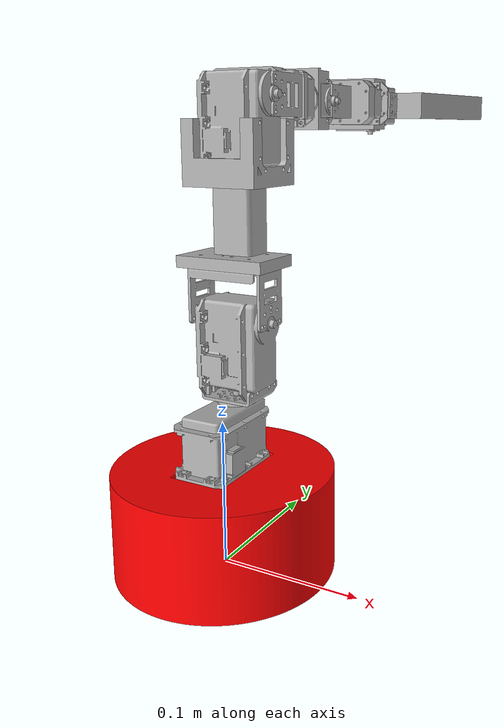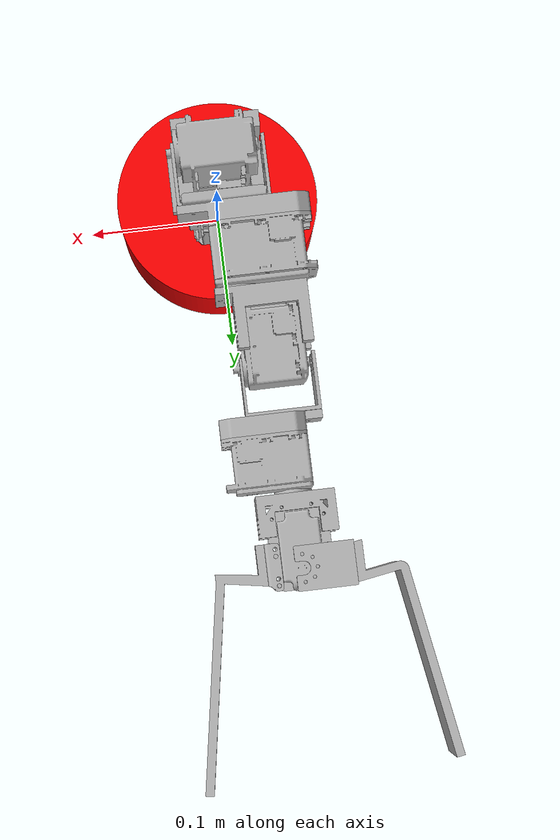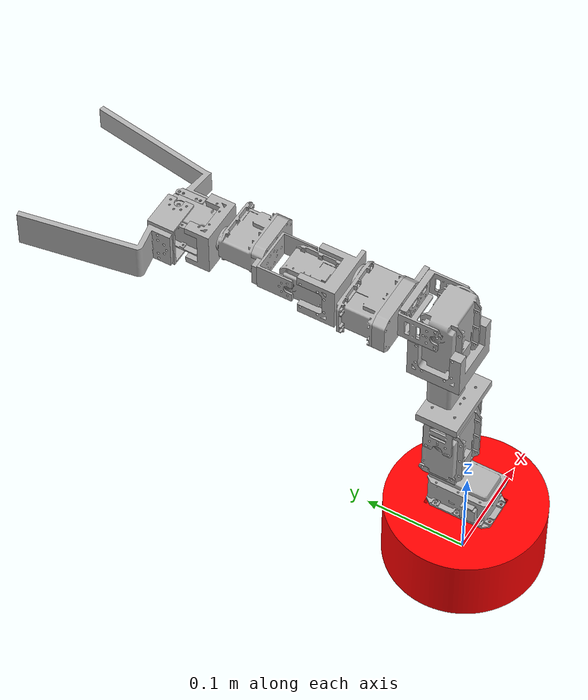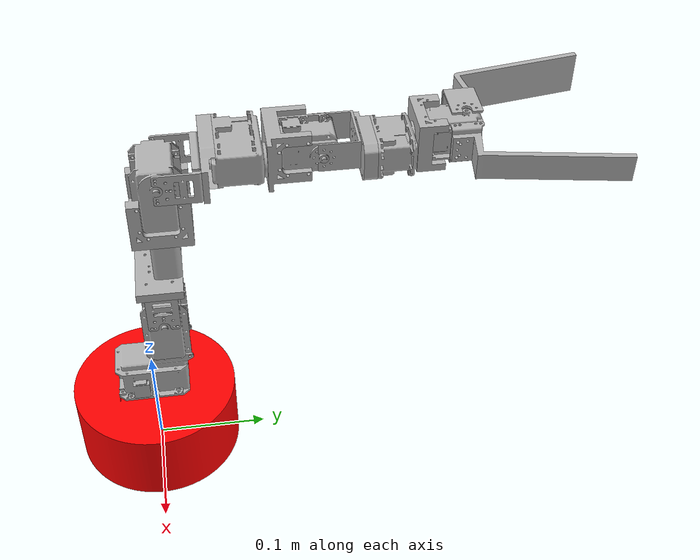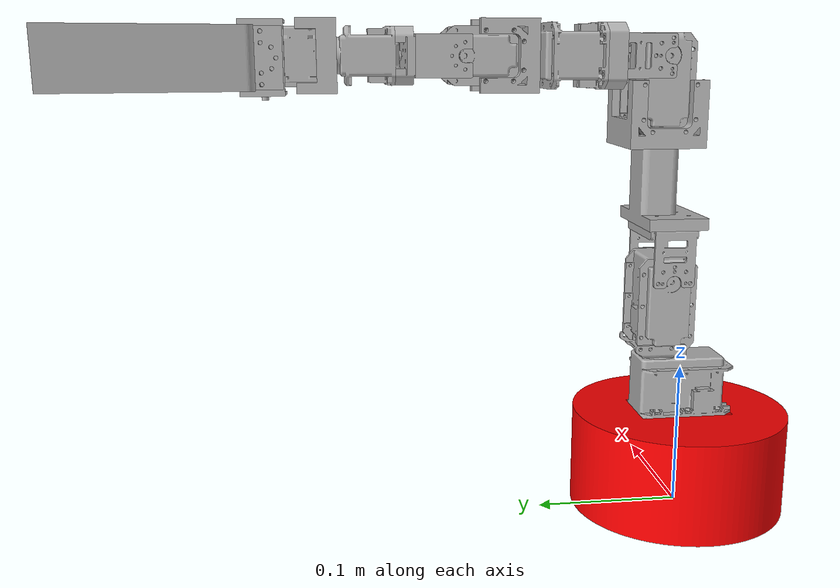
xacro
<?xml version="1.0" ?>
<robot name="success" xmlns:xacro="http://www.ros.org/wiki/xacro">

<xacro:include filename="$(find robotarm1)/urdf/materials.xacro" />

<link name="world"/>
<link name="base_link">

  <visual>
    <origin xyz="0.0 0.0 0.0" rpy="0 0 0"/>
    <geometry>
      <mesh filename="file://$(find robotarm1)/meshes/base_link.stl" scale="0.001 0.001 0.001"/>
    </geometry>
    <material name="red"/>
  </visual>
  <collision>
    <origin xyz="0.0 0.0 0.0" rpy="0 0 0"/>
    <geometry>
      <mesh filename="file://$(find robotarm1)/meshes/base_link.stl" scale="0.001 0.001 0.001"/>
    </geometry>
  </collision>
</link>

<link name="motor_1_1">
  <inertial>
    <origin xyz="3.628829346516639e-06 0.002321966228830479 0.01746041392822499" rpy="0 0 0"/>
    <mass value="0.6789927169229144"/>
    <inertia ixx="0.000325" iyy="0.000181" izz="0.000257" ixy="-0.0" iyz="-8e-06" ixz="0.0"/>
  </inertial>
  <visual>
    <origin xyz="-0.0 -0.0 -0.07" rpy="0 0 0"/>
    <geometry>
      <mesh filename="file://$(find robotarm1)/meshes/motor_1_1.stl" scale="0.001 0.001 0.001"/>
    </geometry>
    <material name="silver"/>
  </visual>
  <collision>
    <origin xyz="-0.0 -0.0 -0.07" rpy="0 0 0"/>
    <geometry>
      <mesh filename="file://$(find robotarm1)/meshes/motor_1_1.stl" scale="0.001 0.001 0.001"/>
    </geometry>
  </collision>
</link>

<link name="link_1_1">
  <inertial>
    <origin xyz="3.116517286715824e-14 0.0011404315085001282 0.0026024287473348923" rpy="0 0 0"/>
    <mass value="0.02126433295845854"/>
    <inertia ixx="2e-06" iyy="4e-06" izz="6e-06" ixy="0.0" iyz="-0.0" ixz="0.0"/>
  </inertial>
  <visual>
    <origin xyz="-0.0 -0.01805 -0.113" rpy="0 0 0"/>
    <geometry>
      <mesh filename="file://$(find robotarm1)/meshes/link_1_1.stl" scale="0.001 0.001 0.001"/>
    </geometry>
    <material name="silver"/>
  </visual>
  <collision>
    <origin xyz="-0.0 -0.01805 -0.113" rpy="0 0 0"/>
    <geometry>
      <mesh filename="file://$(find robotarm1)/meshes/link_1_1.stl" scale="0.001 0.001 0.001"/>
    </geometry>
  </collision>
</link>

<link name="motor_2_1">
  <inertial>
    <origin xyz="-0.016539586071775015 0.011003628829346513 0.03207196622883057" rpy="0 0 0"/>
    <mass value="0.6789927169229144"/>
    <inertia ixx="0.000257" iyy="0.000325" izz="0.000181" ixy="0.0" iyz="-0.0" ixz="-8e-06"/>
  </inertial>
  <visual>
    <origin xyz="-0.017 -0.00705 -0.1197" rpy="0 0 0"/>
    <geometry>
      <mesh filename="file://$(find robotarm1)/meshes/motor_2_1.stl" scale="0.001 0.001 0.001"/>
    </geometry>
    <material name="silver"/>
  </visual>
  <collision>
    <origin xyz="-0.017 -0.00705 -0.1197" rpy="0 0 0"/>
    <geometry>
      <mesh filename="file://$(find robotarm1)/meshes/motor_2_1.stl" scale="0.001 0.001 0.001"/>
    </geometry>
  </collision>
</link>

<link name="link_2_1">
  <inertial>
    <origin xyz="-0.02799999999998063 1.3877787807814457e-17 0.02600995253479038" rpy="0 0 0"/>
    <mass value="0.05448373289857463"/>
    <inertia ixx="1.3e-05" iyy="3.3e-05" izz="3.1e-05" ixy="0.0" iyz="-0.0" ixz="-0.0"/>
  </inertial>
  <visual>
    <origin xyz="-0.0278 -0.01805 -0.1675" rpy="0 0 0"/>
    <geometry>
      <mesh filename="file://$(find robotarm1)/meshes/link_2_1.stl" scale="0.001 0.001 0.001"/>
    </geometry>
    <material name="silver"/>
  </visual>
  <collision>
    <origin xyz="-0.0278 -0.01805 -0.1675" rpy="0 0 0"/>
    <geometry>
      <mesh filename="file://$(find robotarm1)/meshes/link_2_1.stl" scale="0.001 0.001 0.001"/>
    </geometry>
  </collision>
</link>

<link name="link_3_1">
  <inertial>
    <origin xyz="-0.019002468210588833 -0.006143533986367598 0.020025426911635252" rpy="0 0 0"/>
    <mass value="0.0552102238099497"/>
    <inertia ixx="2e-05" iyy="2.5e-05" izz="1.5e-05" ixy="-0.0" iyz="-3e-06" ixz="-0.0"/>
  </inertial>
  <visual>
    <origin xyz="-0.0188 -0.02905 -0.2035" rpy="0 0 0"/>
    <geometry>
      <mesh filename="file://$(find robotarm1)/meshes/link_3_1.stl" scale="0.001 0.001 0.001"/>
    </geometry>
    <material name="silver"/>
  </visual>
  <collision>
    <origin xyz="-0.0188 -0.02905 -0.2035" rpy="0 0 0"/>
    <geometry>
      <mesh filename="file://$(find robotarm1)/meshes/link_3_1.stl" scale="0.001 0.001 0.001"/>
    </geometry>
  </collision>
</link>

<link name="link_4_1">
  <inertial>
    <origin xyz="-0.012000000096857465 0.008000000078501213 0.01235958080171562" rpy="0 0 0"/>
    <mass value="0.04342078162492755"/>
    <inertia ixx="1.9e-05" iyy="2.1e-05" izz="2.8e-05" ixy="-0.0" iyz="-0.0" ixz="0.0"/>
  </inertial>
  <visual>
    <origin xyz="-0.0118 -0.01805 -0.2565" rpy="0 0 0"/>
    <geometry>
      <mesh filename="file://$(find robotarm1)/meshes/link_4_1.stl" scale="0.001 0.001 0.001"/>
    </geometry>
    <material name="silver"/>
  </visual>
  <collision>
    <origin xyz="-0.0118 -0.01805 -0.2565" rpy="0 0 0"/>
    <geometry>
      <mesh filename="file://$(find robotarm1)/meshes/link_4_1.stl" scale="0.001 0.001 0.001"/>
    </geometry>
  </collision>
</link>

<link name="motor_3_1">
  <inertial>
    <origin xyz="-0.016539586168632506 0.011003628829346456 0.032071966228830684" rpy="0 0 0"/>
    <mass value="0.6789927169229144"/>
    <inertia ixx="0.000257" iyy="0.000325" izz="0.000181" ixy="0.0" iyz="-0.0" ixz="-8e-06"/>
  </inertial>
  <visual>
    <origin xyz="-0.01755 -0.01505 -0.2673" rpy="0 0 0"/>
    <geometry>
      <mesh filename="file://$(find robotarm1)/meshes/motor_3_1.stl" scale="0.001 0.001 0.001"/>
    </geometry>
    <material name="silver"/>
  </visual>
  <collision>
    <origin xyz="-0.01755 -0.01505 -0.2673" rpy="0 0 0"/>
    <geometry>
      <mesh filename="file://$(find robotarm1)/meshes/motor_3_1.stl" scale="0.001 0.001 0.001"/>
    </geometry>
  </collision>
</link>

<link name="link_5_1">
  <inertial>
    <origin xyz="-0.028000000096838118 0.026009952534790198 1.1102230246251565e-16" rpy="0 0 0"/>
    <mass value="0.05448373289857463"/>
    <inertia ixx="1.3e-05" iyy="3.1e-05" izz="3.3e-05" ixy="-0.0" iyz="0.0" ixz="-0.0"/>
  </inertial>
  <visual>
    <origin xyz="-0.02835 -0.02605 -0.3151" rpy="0 0 0"/>
    <geometry>
      <mesh filename="file://$(find robotarm1)/meshes/link_5_1.stl" scale="0.001 0.001 0.001"/>
    </geometry>
    <material name="silver"/>
  </visual>
  <collision>
    <origin xyz="-0.02835 -0.02605 -0.3151" rpy="0 0 0"/>
    <geometry>
      <mesh filename="file://$(find robotarm1)/meshes/link_5_1.stl" scale="0.001 0.001 0.001"/>
    </geometry>
  </collision>
</link>

<link name="link_6_1">
  <inertial>
    <origin xyz="-0.03447684065920143 0.003923958737854359 0.011000000000006394" rpy="0 0 0"/>
    <mass value="0.019539807667148513"/>
    <inertia ixx="3e-06" iyy="1.2e-05" izz="9e-06" ixy="0.0" iyz="0.0" ixz="0.0"/>
  </inertial>
  <visual>
    <origin xyz="-0.01935 -0.06205 -0.3041" rpy="0 0 0"/>
    <geometry>
      <mesh filename="file://$(find robotarm1)/meshes/link_6_1.stl" scale="0.001 0.001 0.001"/>
    </geometry>
    <material name="silver"/>
  </visual>
  <collision>
    <origin xyz="-0.01935 -0.06205 -0.3041" rpy="0 0 0"/>
    <geometry>
      <mesh filename="file://$(find robotarm1)/meshes/link_6_1.stl" scale="0.001 0.001 0.001"/>
    </geometry>
  </collision>
</link>

<link name="motor_4_1">
  <inertial>
    <origin xyz="-0.01920343918080639 0.01745225090137789 -0.017299999874397454" rpy="0 0 0"/>
    <mass value="0.5683577063335443"/>
    <inertia ixx="0.000133" iyy="0.000195" izz="0.000234" ixy="-7e-06" iyz="0.0" ixz="0.0"/>
  </inertial>
  <visual>
    <origin xyz="-0.002397 -0.07405 -0.3324" rpy="0 0 0"/>
    <geometry>
      <mesh filename="file://$(find robotarm1)/meshes/motor_4_1.stl" scale="0.001 0.001 0.001"/>
    </geometry>
    <material name="silver"/>
  </visual>
  <collision>
    <origin xyz="-0.002397 -0.07405 -0.3324" rpy="0 0 0"/>
    <geometry>
      <mesh filename="file://$(find robotarm1)/meshes/motor_4_1.stl" scale="0.001 0.001 0.001"/>
    </geometry>
  </collision>
</link>

<link name="link_7_1">
  <inertial>
    <origin xyz="3.833091157044548e-08 0.00968525292310743 0.01623972916540989" rpy="0 0 0"/>
    <mass value="0.022873425755281396"/>
    <inertia ixx="9e-06" iyy="1.2e-05" izz="8e-06" ixy="0.0" iyz="-0.0" ixz="0.0"/>
  </inertial>
  <visual>
    <origin xyz="0.001603 -0.11455 -0.3151" rpy="0 0 0"/>
    <geometry>
      <mesh filename="file://$(find robotarm1)/meshes/link_7_1.stl" scale="0.001 0.001 0.001"/>
    </geometry>
    <material name="silver"/>
  </visual>
  <collision>
    <origin xyz="0.001603 -0.11455 -0.3151" rpy="0 0 0"/>
    <geometry>
      <mesh filename="file://$(find robotarm1)/meshes/link_7_1.stl" scale="0.001 0.001 0.001"/>
    </geometry>
  </collision>
</link>

<link name="motor_5_1">
  <inertial>
    <origin xyz="0.008477865125484142 0.024666145926973942 0.014969622739469779" rpy="0 0 0"/>
    <mass value="0.349956896326235"/>
    <inertia ixx="0.000101" iyy="6.3e-05" izz="8.3e-05" ixy="-0.0" iyz="2e-06" ixz="-0.0"/>
  </inertial>
  <visual>
    <origin xyz="0.010103 -0.124747 -0.3176" rpy="0 0 0"/>
    <geometry>
      <mesh filename="file://$(find robotarm1)/meshes/motor_5_1.stl" scale="0.001 0.001 0.001"/>
    </geometry>
    <material name="silver"/>
  </visual>
  <collision>
    <origin xyz="0.010103 -0.124747 -0.3176" rpy="0 0 0"/>
    <geometry>
      <mesh filename="file://$(find robotarm1)/meshes/motor_5_1.stl" scale="0.001 0.001 0.001"/>
    </geometry>
  </collision>
</link>

<link name="link_8_1">
  <inertial>
    <origin xyz="3.825698961052934e-08 0.02042733790270429 0.022291261982574417" rpy="0 0 0"/>
    <mass value="0.005409120330097442"/>
    <inertia ixx="2e-06" iyy="2e-06" izz="1e-06" ixy="0.0" iyz="0.0" ixz="0.0"/>
  </inertial>
  <visual>
    <origin xyz="0.001603 -0.160547 -0.3121" rpy="0 0 0"/>
    <geometry>
      <mesh filename="file://$(find robotarm1)/meshes/link_8_1.stl" scale="0.001 0.001 0.001"/>
    </geometry>
    <material name="silver"/>
  </visual>
  <collision>
    <origin xyz="0.001603 -0.160547 -0.3121" rpy="0 0 0"/>
    <geometry>
      <mesh filename="file://$(find robotarm1)/meshes/link_8_1.stl" scale="0.001 0.001 0.001"/>
    </geometry>
  </collision>
</link>

<link name="link_9_1">
  <inertial>
    <origin xyz="3.853136140491084e-08 0.004151390075282618 -0.027206188860783076" rpy="0 0 0"/>
    <mass value="0.014111619441575405"/>
    <inertia ixx="4e-06" iyy="6e-06" izz="2e-06" ixy="0.0" iyz="0.0" ixz="-0.0"/>
  </inertial>
  <visual>
    <origin xyz="0.001603 -0.190547 -0.3481" rpy="0 0 0"/>
    <geometry>
      <mesh filename="file://$(find robotarm1)/meshes/link_9_1.stl" scale="0.001 0.001 0.001"/>
    </geometry>
    <material name="silver"/>
  </visual>
  <collision>
    <origin xyz="0.001603 -0.190547 -0.3481" rpy="0 0 0"/>
    <geometry>
      <mesh filename="file://$(find robotarm1)/meshes/link_9_1.stl" scale="0.001 0.001 0.001"/>
    </geometry>
  </collision>
</link>

<link name="motor_6_1">
  <inertial>
    <origin xyz="0.014977865319199186 0.015030646170741457 0.0013658771806745462" rpy="0 0 0"/>
    <mass value="0.349956896326235"/>
    <inertia ixx="0.000101" iyy="8.3e-05" izz="6.3e-05" ixy="0.0" iyz="-2e-06" ixz="-0.0"/>
  </inertial>
  <visual>
    <origin xyz="0.016603 -0.201847 -0.3206" rpy="0 0 0"/>
    <geometry>
      <mesh filename="file://$(find robotarm1)/meshes/motor_6_1.stl" scale="0.001 0.001 0.001"/>
    </geometry>
    <material name="silver"/>
  </visual>
  <collision>
    <origin xyz="0.016603 -0.201847 -0.3206" rpy="0 0 0"/>
    <geometry>
      <mesh filename="file://$(find robotarm1)/meshes/motor_6_1.stl" scale="0.001 0.001 0.001"/>
    </geometry>
  </collision>
</link>

<link name="link_10_1">
  <inertial>
    <origin xyz="1.8887901087167973e-05 0.0071153192036195745 1.639161584243709e-10" rpy="0 0 0"/>
    <mass value="0.01651736796671192"/>
    <inertia ixx="5e-06" iyy="8e-06" izz="5e-06" ixy="-0.0" iyz="0.0" ixz="0.0"/>
  </inertial>
  <visual>
    <origin xyz="0.001603 -0.237347 -0.3331" rpy="0 0 0"/>
    <geometry>
      <mesh filename="file://$(find robotarm1)/meshes/link_10_1.stl" scale="0.001 0.001 0.001"/>
    </geometry>
    <material name="silver"/>
  </visual>
  <collision>
    <origin xyz="0.001603 -0.237347 -0.3331" rpy="0 0 0"/>
    <geometry>
      <mesh filename="file://$(find robotarm1)/meshes/link_10_1.stl" scale="0.001 0.001 0.001"/>
    </geometry>
  </collision>
</link>

<link name="gripper_1_1">
  <inertial>
    <origin xyz="-0.00852213468080087 0.02466541483930529 0.014969622903382163" rpy="0 0 0"/>
    <mass value="0.349956896326235"/>
    <inertia ixx="0.000101" iyy="6.3e-05" izz="8.3e-05" ixy="-0.0" iyz="2e-06" ixz="-0.0"/>
  </inertial>
  <visual>
    <origin xyz="-0.006897 -0.245045 -0.3175" rpy="0 0 0"/>
    <geometry>
      <mesh filename="file://$(find robotarm1)/meshes/gripper_1_1.stl" scale="0.001 0.001 0.001"/>
    </geometry>
    <material name="silver"/>
  </visual>
  <collision>
    <origin xyz="-0.006897 -0.245045 -0.3175" rpy="0 0 0"/>
    <geometry>
      <mesh filename="file://$(find robotarm1)/meshes/gripper_1_1.stl" scale="0.001 0.001 0.001"/>
    </geometry>
  </collision>
</link>

<link name="link_11_1">
  <inertial>
    <origin xyz="-0.01984440856141868 -4.6226823008366225e-07 0.019999999077705555" rpy="0 0 0"/>
    <mass value="0.005783955125023724"/>
    <inertia ixx="2e-06" iyy="2e-06" izz="1e-06" ixy="-0.0" iyz="0.0" ixz="0.0"/>
  </inertial>
  <visual>
    <origin xyz="0.001603 -0.280845 -0.312" rpy="0 0 0"/>
    <geometry>
      <mesh filename="file://$(find robotarm1)/meshes/link_11_1.stl" scale="0.001 0.001 0.001"/>
    </geometry>
    <material name="silver"/>
  </visual>
  <collision>
    <origin xyz="0.001603 -0.280845 -0.312" rpy="0 0 0"/>
    <geometry>
      <mesh filename="file://$(find robotarm1)/meshes/link_11_1.stl" scale="0.001 0.001 0.001"/>
    </geometry>
  </collision>
</link>

<link name="link_12_1">
  <inertial>
    <origin xyz="0.0037855317374185585 0.008966871691439171 0.015000000163890914" rpy="0 0 0"/>
    <mass value="0.011446844551351427"/>
    <inertia ixx="2e-06" iyy="2e-06" izz="1e-06" ixy="0.0" iyz="0.0" ixz="0.0"/>
  </inertial>
  <visual>
    <origin xyz="-0.013397 -0.268345 -0.3175" rpy="0 0 0"/>
    <geometry>
      <mesh filename="file://$(find robotarm1)/meshes/link_12_1.stl" scale="0.001 0.001 0.001"/>
    </geometry>
    <material name="silver"/>
  </visual>
  <collision>
    <origin xyz="-0.013397 -0.268345 -0.3175" rpy="0 0 0"/>
    <geometry>
      <mesh filename="file://$(find robotarm1)/meshes/link_12_1.stl" scale="0.001 0.001 0.001"/>
    </geometry>
  </collision>
</link>

<link name="finger_1_1">
  <inertial>
    <origin xyz="0.029698751975400128 0.04833113338431294 1.6390966361967685e-10" rpy="0 0 0"/>
    <mass value="0.02058349518896819"/>
    <inertia ixx="3.5e-05" iyy="5e-06" izz="3.8e-05" ixy="-1e-05" iyz="-0.0" ixz="-0.0"/>
  </inertial>
  <visual>
    <origin xyz="-0.019397 -0.276845 -0.3325" rpy="0 0 0"/>
    <geometry>
      <mesh filename="file://$(find robotarm1)/meshes/finger_1_1.stl" scale="0.001 0.001 0.001"/>
    </geometry>
    <material name="silver"/>
  </visual>
  <collision>
    <origin xyz="-0.019397 -0.276845 -0.3325" rpy="0 0 0"/>
    <geometry>
      <mesh filename="file://$(find robotarm1)/meshes/finger_1_1.stl" scale="0.001 0.001 0.001"/>
    </geometry>
  </collision>
</link>

<link name="finger_2_1">
  <inertial>
    <origin xyz="-0.028807833816751158 0.04420295431414534 -7.216449660063518e-16" rpy="0 0 0"/>
    <mass value="0.0296291055226969"/>
    <inertia ixx="4.5e-05" iyy="9e-06" izz="4.7e-05" ixy="1.3e-05" iyz="-0.0" ixz="0.0"/>
  </inertial>
  <visual>
    <origin xyz="0.031603 -0.280845 -0.332" rpy="0 0 0"/>
    <geometry>
      <mesh filename="file://$(find robotarm1)/meshes/finger_2_1.stl" scale="0.001 0.001 0.001"/>
    </geometry>
    <material name="silver"/>
  </visual>
  <collision>
    <origin xyz="0.031603 -0.280845 -0.332" rpy="0 0 0"/>
    <geometry>
      <mesh filename="file://$(find robotarm1)/meshes/finger_2_1.stl" scale="0.001 0.001 0.001"/>
    </geometry>
  </collision>
</link>

<link name="ft_frame"/>
<link name="tool0"/>

<joint name="world_to_base" type="fixed">
  <parent link="world"/>
  <child link="base_link"/>
  <!-- Optionally set the origin for placement -->
  <origin xyz="0 0 0" rpy="0 0 0"/>
  <axis xyz="0 0 1"/>
</joint>

<joint name="Rigid 1" type="fixed">
  <origin xyz="0.0 0.0 0.07" rpy="0 0 0"/>
  <parent link="base_link"/>
  <child link="motor_1_1"/>
</joint>

<joint name="Revolute_2" type="revolute">
  <origin xyz="0.0 0.01805 0.043" rpy="0 0 0"/>
  <parent link="motor_1_1"/>
  <child link="link_1_1"/>
  <axis xyz="0.0 0.0 -1.0"/>
  <limit upper="1.658063" lower="-1.570796" effort="100" velocity="100"/>
</joint>

<joint name="Rigid 3" type="fixed">
  <origin xyz="0.017 -0.011 0.0067" rpy="0 0 0"/>
  <parent link="link_1_1"/>
  <child link="motor_2_1"/>
</joint>

<joint name="Revolute_4" type="revolute">
  <origin xyz="0.0108 0.011 0.0478" rpy="0 0 0"/>
  <parent link="motor_2_1"/>
  <child link="link_2_1"/>
  <axis xyz="-1.0 -0.0 0.0"/>
  <limit upper="1.570796" lower="-1.570796" effort="100" velocity="100"/>
</joint>

<joint name="Rigid 5" type="fixed">
  <origin xyz="-0.009 0.011 0.036" rpy="0 0 0"/>
  <parent link="link_2_1"/>
  <child link="link_3_1"/>
</joint>

<joint name="Rigid 6" type="fixed">
  <origin xyz="-0.007 -0.011 0.053" rpy="0 0 0"/>
  <parent link="link_3_1"/>
  <child link="link_4_1"/>
</joint>

<joint name="Rigid 7" type="fixed">
  <origin xyz="0.00575 -0.003 0.0108" rpy="0 0 0"/>
  <parent link="link_4_1"/>
  <child link="motor_3_1"/>
</joint>

<joint name="Revolute_8" type="revolute">
  <origin xyz="0.0108 0.011 0.0478" rpy="0 0 0"/>
  <parent link="motor_3_1"/>
  <child link="link_5_1"/>
  <axis xyz="-1.0 -0.0 0.0"/>
  <limit upper="1.570796" lower="-1.570796" effort="100" velocity="100"/>
</joint>

<joint name="Rigid 9" type="fixed">
  <origin xyz="-0.009 0.036 -0.011" rpy="0 0 0"/>
  <parent link="link_5_1"/>
  <child link="link_6_1"/>
</joint>

<joint name="Rigid 10" type="fixed">
  <origin xyz="-0.016953 0.012 0.0283" rpy="0 0 0"/>
  <parent link="link_6_1"/>
  <child link="motor_4_1"/>
</joint>

<joint name="Revolute_11" type="revolute">
  <origin xyz="-0.004 0.0405 -0.0173" rpy="0 0 0"/>
  <parent link="motor_4_1"/>
  <child link="link_7_1"/>
  <axis xyz="0.0 -1.0 0.0"/>
  <limit upper="1.570796" lower="-1.570796" effort="100" velocity="100"/>
</joint>

<joint name="Rigid 12" type="fixed">
  <origin xyz="-0.0085 0.010197 0.0025" rpy="0 0 0"/>
  <parent link="link_7_1"/>
  <child link="motor_5_1"/>
</joint>

<joint name="Revolute_13" type="revolute">
  <origin xyz="0.0085 0.0358 -0.0055" rpy="0 0 0"/>
  <parent link="motor_5_1"/>
  <child link="link_8_1"/>
  <axis xyz="-0.0 0.0 1.0"/>
  <limit upper="1.570796" lower="-1.570796" effort="100" velocity="100"/>
</joint>

<joint name="Rigid 14" type="fixed">
  <origin xyz="0.0 0.03 0.036" rpy="0 0 0"/>
  <parent link="link_8_1"/>
  <child link="link_9_1"/>
</joint>

<joint name="Rigid 15" type="fixed">
  <origin xyz="-0.015 0.0113 -0.0275" rpy="0 0 0"/>
  <parent link="link_9_1"/>
  <child link="motor_6_1"/>
</joint>

<joint name="Revolute_16" type="revolute">
  <origin xyz="0.015 0.0355 0.0125" rpy="0 0 0"/>
  <parent link="motor_6_1"/>
  <child link="link_10_1"/>
  <axis xyz="0.0 -1.0 0.0"/>
  <limit upper="1.570796" lower="-1.570796" effort="100" velocity="100"/>
</joint>

<joint name="Rigid 17" type="fixed">
  <origin xyz="0.0085 0.007698 -0.0156" rpy="0 0 0"/>
  <parent link="link_10_1"/>
  <child link="gripper_1_1"/>
</joint>

<joint name="Revolute_18" type="revolute">
  <origin xyz="-0.0085 0.0358 -0.0055" rpy="0 0 0"/>
  <parent link="gripper_1_1"/>
  <child link="link_11_1"/>
  <axis xyz="-0.0 0.0 1.0"/>
  <limit upper="0.0" lower="-0.872665" effort="100" velocity="100"/>
</joint>

<joint name="Rigid 19" type="fixed">
  <origin xyz="0.0065 0.0233 0.0" rpy="0 0 0"/>
  <parent link="gripper_1_1"/>
  <child link="link_12_1"/>
</joint>

<joint name="Rigid 20" type="fixed">
  <origin xyz="0.006 0.0085 0.015" rpy="0 0 0"/>
  <parent link="link_12_1"/>
  <child link="finger_1_1"/>
</joint>

<joint name="Rigid 21" type="fixed">
  <origin xyz="-0.03 0.0 0.02" rpy="0 0 0"/>
  <parent link="link_11_1"/>
  <child link="finger_2_1"/>
</joint>

<joint name="joint-ft_frame" type="fixed">
    <parent link="gripper_1_1"/>
    <child link="ft_frame"/>
    <origin xyz="0 0 0" rpy="0 0 0"/>
  </joint>

<joint name="joint-tool" type="fixed">
    <parent link="ft_frame"/>
    <child link="tool0"/>
    <origin xyz="-0.0085 0.0358 -0.0055" rpy="0 0 0"/>
</joint>

<ros2_control name="GazeboSystem" type="system">
  <hardware>
    <plugin>gazebo_ros2_control/GazeboSystem</plugin>
  </hardware>
  <joint name="Revolute_2">
    <command_interface name="position">
        <param name="min">-1.570796</param>
        <param name="max"> 1.570796</param>
    </command_interface>
    <state_interface name="position">
        <param name="initial_value">0.0</param>
    </state_interface>
    <state_interface name="velocity"/>
    <state_interface name="effort"/>
  </joint>

  <joint name="Revolute_4">
    <command_interface name="position">
        <param name="min">-1.570796</param>
        <param name="max"> 1.570796</param>
    </command_interface>
    <state_interface name="position">
        <param name="initial_value">0.0</param>
    </state_interface>
    <state_interface name="velocity"/>
    <state_interface name="effort"/>
  </joint>

  <joint name="Revolute_8">
    <command_interface name="position">
        <param name="min">-1.570796</param>
        <param name="max"> 1.570796</param>
    </command_interface>
    <state_interface name="position">
        <param name="initial_value">0.0</param>
    </state_interface>
    <state_interface name="velocity"/>
    <state_interface name="effort"/>
  </joint>

  <joint name="Revolute_11">
    <command_interface name="position">
        <param name="min">-1.570796</param>
        <param name="max"> 1.570796</param>
    </command_interface>
    <state_interface name="position">
        <param name="initial_value">0.0</param>
    </state_interface>
    <state_interface name="velocity"/>
    <state_interface name="effort"/>
  </joint>

  <joint name="Revolute_13">
    <command_interface name="position">
        <param name="min">-1.570796</param>
        <param name="max"> 1.570796</param>
    </command_interface>
    <state_interface name="position">
        <param name="initial_value">0.0</param>
    </state_interface>
    <state_interface name="velocity"/>
    <state_interface name="effort"/>
  </joint>

  <joint name="Revolute_16">
    <command_interface name="position">
        <param name="min">-1.570796</param>
        <param name="max"> 1.570796</param>
    </command_interface>
    <state_interface name="position">
        <param name="initial_value">0.0</param>
    </state_interface>
    <state_interface name="velocity"/>
    <state_interface name="effort"/>
  </joint>

  <joint name="Revolute_18">
    <command_interface name="position">
        <param name="min">-0.872665</param>
        <param name="max"> 0</param>
    </command_interface>

    <command_interface name="effort">
        <param name="max"> 5.0</param>
    </command_interface>
    <state_interface name="position">
        <param name="initial_value">0.0</param>
    </state_interface>
    <state_interface name="velocity"/>
    <state_interface name="effort"/>
  </joint>

</ros2_control>

<gazebo>
  <plugin filename="libgazebo_ros2_control.so" name="gazebo_ros2_control">
    <parameters>$(find robotarm1)/config/ros2_controllers.yaml</parameters>
  </plugin>
</gazebo>

</robot>

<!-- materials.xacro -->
<robot name="success" xmlns:xacro="http://www.ros.org/wiki/xacro" >

<material name="silver">
  <color rgba="0.700 0.700 0.700 1.000"/>
</material>

<material name="red">
  <color rgba="1.000 0.000 0.000 1.000"/>
</material>

</robot>
